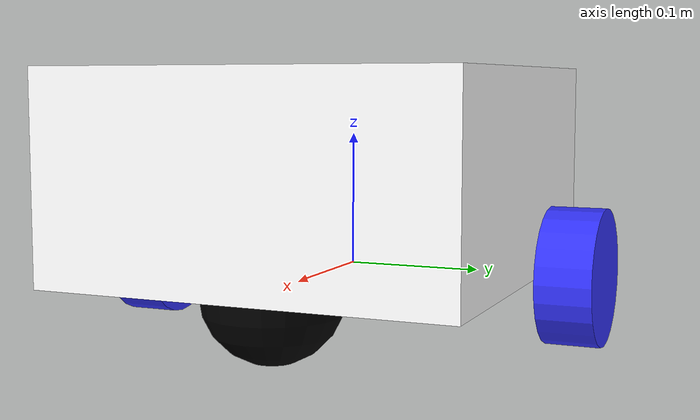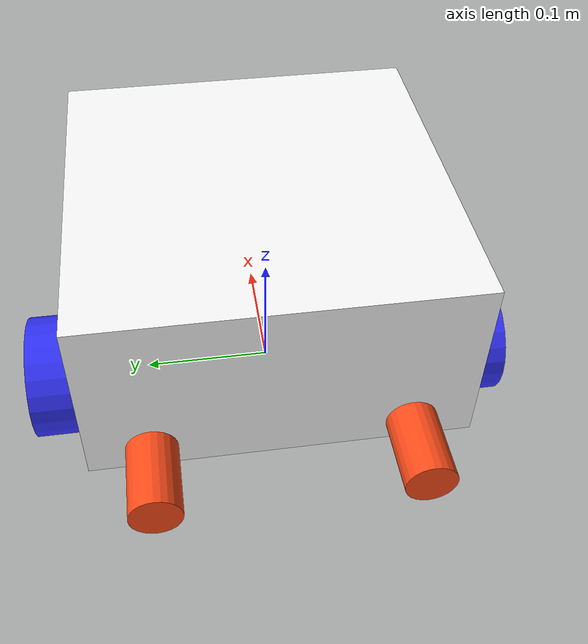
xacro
<?xml version="1.0"?>
<robot xmlns:xacro="http://www.ros.org/wiki/xacro" >

    <xacro:include filename="inertial_macros.xacro"/>

    <material name="white">
        <color rgba="1 1 1 1" />
    </material>

    <material name="orange">
        <color rgba="1 0.3 0.1 1"/>
    </material>

    <material name="blue">
        <color rgba="0.2 0.2 1 1"/>
    </material>

    <material name="black">
        <color rgba="0 0 0 1"/>
    </material>

    <!-- BASE LINK -->

    <link name="base_link">

    </link>

    <!-- CHASSIS LINK -->

    <joint name="chassis_joint" type="fixed">
        <parent link="base_link"/>
        <child link="chassis"/>
        <origin xyz="-0.1 0 0"/>
    </joint>

    <link name="chassis">
        <visual>
            <origin xyz="0.15 0 0.075"/>
            <geometry>
                <box size="0.3 0.3 0.15"/>
            </geometry>
            <material name="white"/>
        </visual>
        <collision>
            <origin xyz="0.15 0 0.075"/>
            <geometry>
                <box size="0.3 0.3 0.15"/>
            </geometry>
        </collision>
        <xacro:inertial_box mass="0.7" x="0.3" y="0.3" z="0.15">
            <origin xyz="0.15 0 0.075"/>
        </xacro:inertial_box>
    </link>

    <gazebo reference="chassis">
        <material>Gazebo/White</material>
    </gazebo>

    <!-- LEFT PROPELLER -->
    <joint name="left_propeller_joint" type="continuous">
        <parent link="chassis"/>
        <child link="left_propeller"/>
        <origin xyz="-.03 -0.1 0.02" rpy="0 ${pi/2} 0"/>
        <axis xyz="0 0 1"/>
    </joint>

    <link name="left_propeller">
        <visual>
            <geometry>
                <cylinder radius=".02" length=".06"/>
            </geometry>
            <material name="orange"/>
        </visual>
        <collision>
            <geometry>
                <cylinder radius=".02" length=".06"/>
            </geometry>
        </collision>
        <xacro:inertial_cylinder mass=".03" length=".06" radius=".02">
            <origin xyz="0 0 0" rpy="0 0 0"/>
        </xacro:inertial_cylinder>
    </link>

    <gazebo reference="left_propeller">
        <material>Gazebo/Orange</material>
    </gazebo>

    <!-- RIGHT PROPELLER-->
    <joint name="right_propeller_joint" type="continuous">
        <parent link="chassis"/>
        <child link="right_propeller"/>
        <origin xyz="-.03 0.1 0.02" rpy="0 ${pi/2} 0"/>
        <axis xyz="0 0 1"/>
    </joint>

    <link name="right_propeller">
        <visual>
            <geometry>
                <cylinder radius=".02" length=".06"/>
            </geometry>
            <material name="orange"/>
        </visual>
        <collision>
            <geometry>
                <cylinder radius=".02" length=".06"/>
            </geometry>
        </collision>
        <xacro:inertial_cylinder mass=".03" length=".06" radius=".02">
            <origin xyz="0 0 0" rpy="0 0 0"/>
        </xacro:inertial_cylinder>
    </link>

    <gazebo reference="right_propeller">
        <material>Gazebo/Orange</material>
    </gazebo>

    <!-- LEFT WHEEL LINK -->

    <joint name="left_wheel_joint" type="continuous">
        <parent link="base_link"/>
        <child link="left_wheel"/>
        <origin xyz="0 0.175 0" rpy="-${pi/2} 0 0" />
        <axis xyz="0 0 1"/>
    </joint>

    <link name="left_wheel">
        <visual>
            <geometry>
                <cylinder radius="0.05" length="0.04"/>
            </geometry>
            <material name="blue"/>
        </visual>
        <collision>
            <geometry>
                <cylinder radius="0.05" length="0.04"/>
            </geometry>
        </collision>
        <xacro:inertial_cylinder mass="0.1" length="0.04" radius="0.05">
            <origin xyz="0 0 0" rpy="0 0 0"/>
        </xacro:inertial_cylinder>
    </link>

    <gazebo reference="left_wheel">
        <material>
            <script>
              <name>Gazebo/BlueTransparent</name>
              <uri>file://media/materials/scripts/gazebo.material</uri>
            </script>
          </material>
    </gazebo>

    <!-- RIGHT WHEEL LINK -->

    <joint name="right_wheel_joint" type="continuous">
        <parent link="base_link"/>
        <child link="right_wheel"/>
        <origin xyz="0 -0.175 0" rpy="${pi/2} 0 0" />
        <axis xyz="0 0 -1"/>
    </joint>

    <link name="right_wheel">
        <visual>
            <geometry>
                <cylinder radius="0.05" length="0.04"/>
            </geometry>
            <material name="blue"/>
        </visual>
        <collision>
            <geometry>
                <cylinder radius="0.05" length="0.04"/>
            </geometry>
        </collision>
        <xacro:inertial_cylinder mass="0.1" length="0.04" radius="0.05">
            <origin xyz="0 0 0" rpy="0 0 0"/>
        </xacro:inertial_cylinder>
    </link>

    <gazebo reference="right_wheel">
        <material>
            <script>
              <name>Gazebo/BlueTransparent</name>
              <uri>file://media/materials/scripts/gazebo.material</uri>
            </script>
          </material>
    </gazebo>

    <!-- CASTER WHEEL LINK -->

    <joint name="caster_wheel_joint" type="fixed">
        <parent link="chassis"/>
        <child link="caster_wheel"/>
        <origin xyz="0.24 0 0"/>
    </joint>

    <link name="caster_wheel">
        <visual>
            <geometry>
                <sphere radius="0.05"/>
            </geometry>
            <material name="black"/>
        </visual>
        <collision>
            <geometry>
                <sphere radius="0.05"/>
            </geometry>
        </collision>
        <xacro:inertial_sphere mass="0.1" radius="0.05">
            <origin xyz="0 0 0" rpy="0 0 0"/>
        </xacro:inertial_sphere>
    </link>

    <gazebo reference="caster_wheel">
        <material>
            <script>
              <name>Gazebo/BlueTransparent</name>
              <uri>file://media/materials/scripts/gazebo.material</uri>
            </script>
          </material>
          <mu1 value="0.001"/>
          <mu2 value="0.001"/>
    </gazebo>

</robot>
